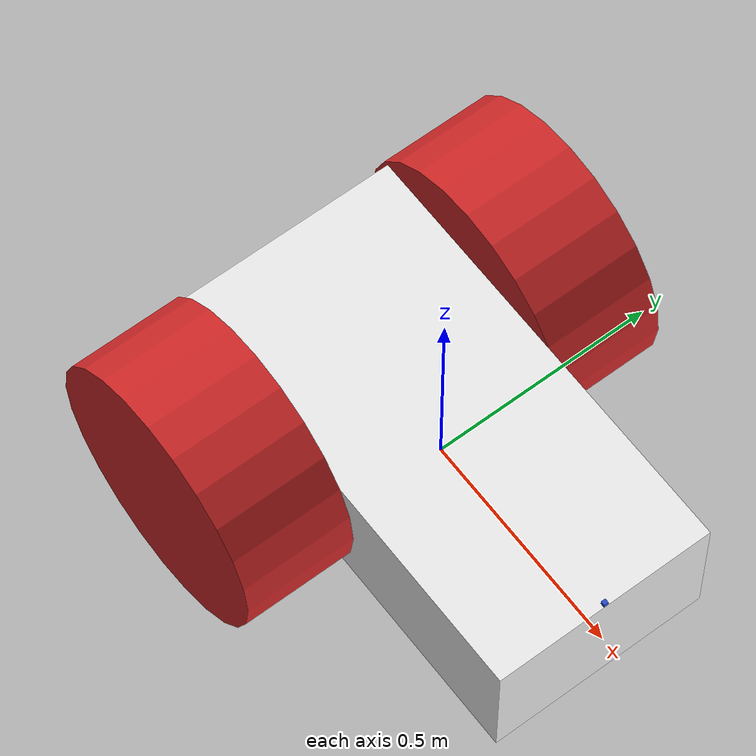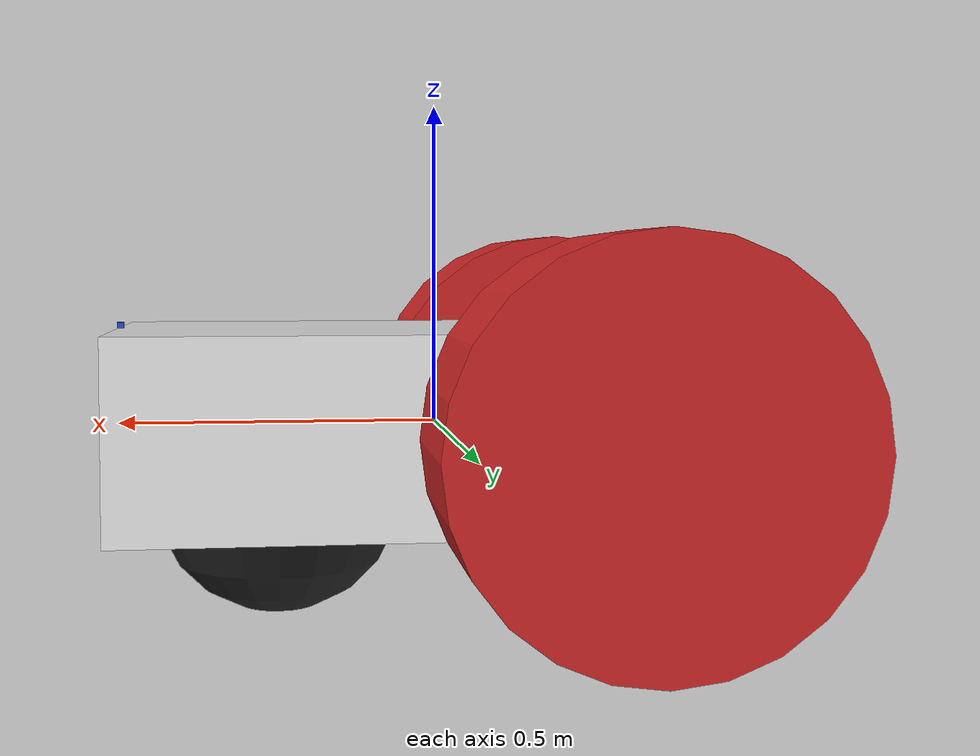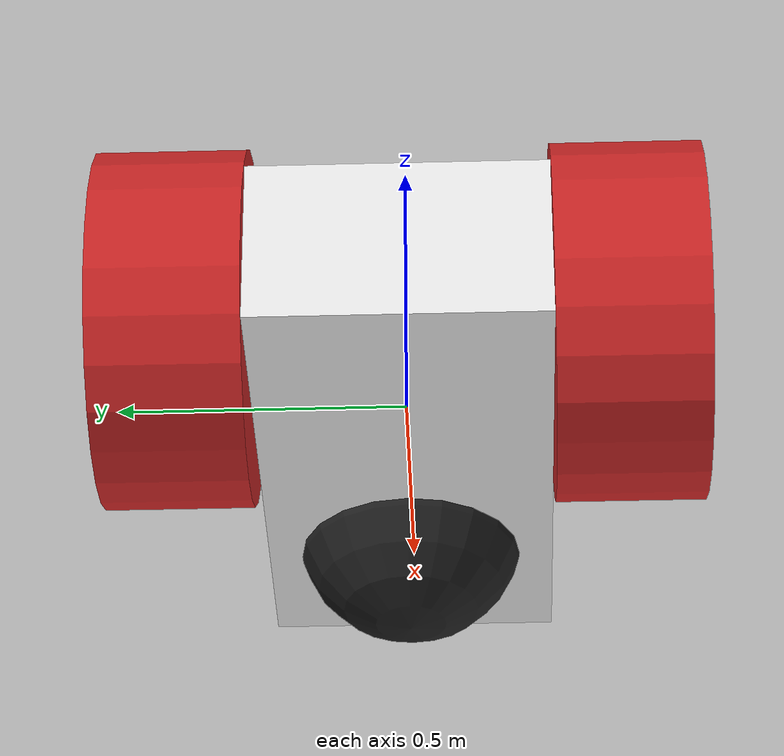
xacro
<?xml version="1.0"?>
<robot xmlns:xacro="http://www.ros.org/wiki/xacro" name="simple_rover">

  <!-- Define xacro properties for wheels -->
  <xacro:property name="wheel_radius" value="0.3"/>
  <xacro:property name="wheel_width" value="0.25"/>
  <xacro:property name="wheel_separation" value="0.5"/>

  <xacro:include filename="$(find simulation)/urdf/camera.urdf.xacro"/>
  <xacro:normal_camera robot_name="rover"/>

  <gazebo reference="base_link">
    <material>Gazebo/White</material>
    <mu1>0.2</mu1>
    <mu2>0.2</mu2>
  </gazebo>

  <gazebo reference="right_wheel">
    <material>Gazebo/Red</material>
    <mu1>0.84</mu1>
    <mu2>0.84</mu2>
  </gazebo>

  <gazebo reference="left_wheel">
    <material>Gazebo/Red</material>
    <mu1>0.84</mu1>
    <mu2>0.84</mu2>
  </gazebo>

  <gazebo reference="caster_wheel">
    <material>Gazebo/Black</material>
    <mu1>0.0</mu1>
    <mu2>0.0</mu2>
  </gazebo>

  <gazebo reference="camera_link">
    <material>Gazebo/Blue</material>
  </gazebo>

  <link name="base_link">
    <visual>
      <geometry>
      <box size="1.0 0.5 0.3"/>
      </geometry>
    </visual>

    <collision>
      <geometry>
      <box size="1.0 0.5 0.3"/>
      </geometry>
    </collision>

    <inertial>
      <mass value="1"/>
      <inertia ixx="0.166667" ixy="0" ixz="0" iyy="0.166667" iyz="0" izz="0.166667"/>
    </inertial>
  </link>

  <link name="left_wheel">
    <visual>
      <geometry>
      <cylinder radius="0.3" length="0.25"/>
      </geometry>
    </visual>

    <collision>
      <geometry>
      <cylinder radius="0.3" length="0.25"/>
      </geometry>
    </collision>

    <inertial>
      <mass value="1"/>
      <inertia ixx="0.145833" ixy="0.0" ixz="0.0" iyy="0.145833" iyz="0.0" izz="0.125"/>
    </inertial>
  </link>

  <link name="right_wheel">
    <visual>
      <geometry>
      <cylinder radius="0.3" length="0.25"/>
      </geometry>
    </visual>

    <collision>
      <geometry>
      <cylinder radius="0.3" length="0.25"/>
      </geometry>
    </collision>

    <inertial>
      <mass value="1"/>
      <inertia ixx="0.145833" ixy="0.0" ixz="0.0" iyy="0.145833" iyz="0.0" izz="0.125"/>
    </inertial>
  </link>

  <link name="caster_wheel">
    <visual>
      <geometry>
      <sphere radius="0.2"/>
      </geometry>
    </visual>

    <collision>
      <geometry>
      <sphere radius="0.2"/>
      </geometry>
    </collision>

    <inertial>
      <mass value="1"/>
      <inertia ixx="0.1" ixy="0.0" ixz="0.0" iyy="0.1" iyz="0.0" izz="0.1"/>
    </inertial>
  </link>

  <link name="camera_link">
    <visual>
      <geometry>
        <box size="0.01 0.01 0.01"/>
      </geometry>
    </visual>

    <collision>
      <geometry>
        <box size="0.01 0.01 0.01"/>
      </geometry>
    </collision>

    <inertial>
      <mass value="0.01"/>
      <inertia ixx="0.0001" ixy="0.0" ixz="0.0" iyy="0.0001" iyz="0.0" izz="0.0001"/>
    </inertial>
  </link>

  <joint name="joint_left" type="continuous">
    <parent link="base_link"/>
    <child link="left_wheel"/>
    <origin xyz="-0.25 0.375 0" rpy="1.5708 0 0"/>
    <axis xyz="0 0 -1"/>
    <dynamics friction="0.1"/>
  </joint>

  <joint name="joint_right" type="continuous">
    <parent link="base_link"/>
    <child link="right_wheel"/>
    <origin xyz="-0.25 -0.375 0" rpy="1.5708 0 0"/>
    <axis xyz="0 0 -1"/>
    <dynamics friction="0.1"/>
  </joint>

  <joint name="joint_caster_wheel" type="continuous">
    <parent link="base_link"/>
    <child link="caster_wheel"/>
    <origin xyz="0.25 0 -0.1" rpy="0 0 0"/>
    <dynamics friction="0.0"/>
  </joint>

  <joint name="camera_joint" type="fixed">
    <parent link="base_link"/>
    <child link="camera_link"/>
    <origin xyz="0.495 0 0.155" rpy="0 3.14159 3.14159"/>
  </joint>

  <gazebo>
    <plugin filename="gz-sim-diff-drive-system" name="gz::sim::systems::DiffDrive">
      <left_joint>joint_left</left_joint>
      <right_joint>joint_right</right_joint>
      <wheel_separation>${wheel_separation + wheel_width}</wheel_separation>
      <wheel_radius>${wheel_radius}</wheel_radius>
      <odom_publish_frequency>30</odom_publish_frequency>
      <max_wheel_torque>20</max_wheel_torque>
      <max_wheel_acceleration>1.0</max_wheel_acceleration>
      <topic>cmd_vel</topic>
      <odom_topic>odom</odom_topic>
      <frame_id>odom</frame_id>
      <child_frame_id>base_link</child_frame_id>
    </plugin>
  </gazebo>

  <gazebo>
    <plugin filename="gz-sim-sensors-system" name="gz::sim::systems::Sensors">
      <render_engine>ogre2</render_engine>
    </plugin>
  </gazebo>

</robot>
